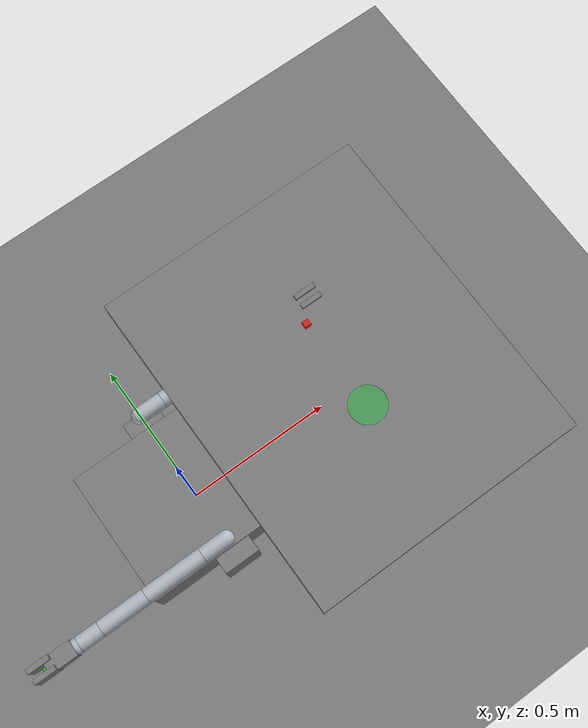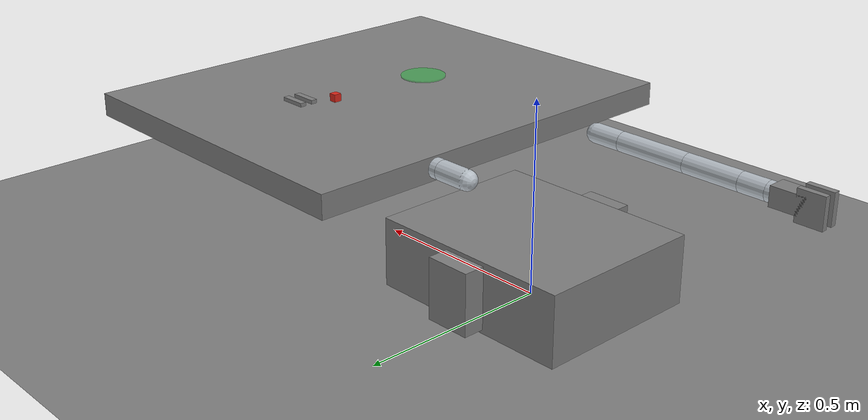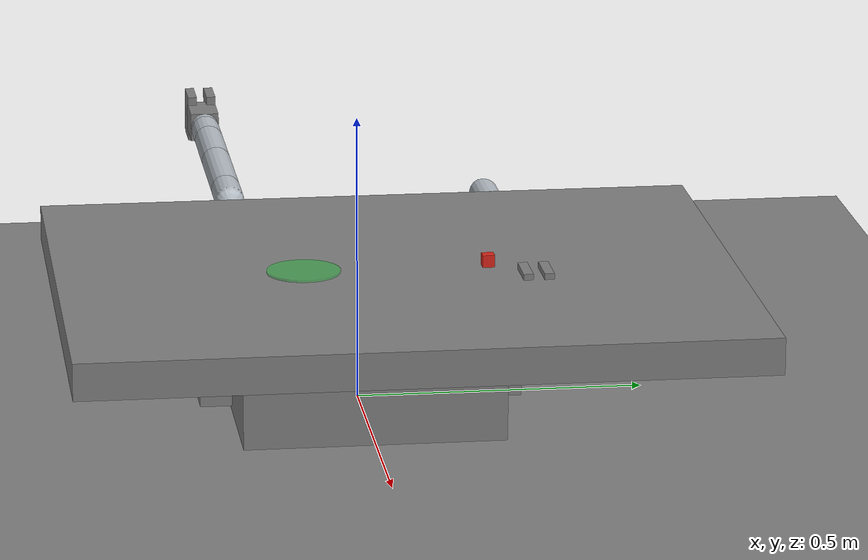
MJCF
<?xml version='1.0' encoding='utf-8'?>
<mujoco model="mobile_bi_nexarm">
  <compiler angle="radian" autolimits="true" />
  <option timestep="0.002" gravity="0 0 -9.81" />
  <default>
    <position kp="100" kv="0.3" />
  </default>
  <worldbody>
    <light pos="0 0 3" dir="0 0 -1" directional="true" />
    <geom name="floor" type="plane" size="2 2 0.05" contype="4" conaffinity="3" />
    <body name="table" pos="0.55 0 0.36">
      <geom name="table_collision" type="box" size="0.45 0.55 0.03" friction="0.2 0.005 0.0001" contype="4" conaffinity="3" />
    </body>
    <body name="mobile_base" pos="0 0 0.09">
      <joint name="base_x" type="slide" axis="1 0 0" damping="1" />
      <joint name="base_y" type="slide" axis="0 1 0" damping="1" />
      <joint name="base_yaw" type="hinge" axis="0 0 1" damping="1" />
      <geom name="base_collision" type="box" size="0.275 0.225 0.09" mass="18.0" contype="1" conaffinity="6" />
      <body name="lift_carriage" gravcomp="1">
        <joint name="lift_axis" type="slide" axis="0 0 1" range="0 0.35" limited="true" damping="4" />
        <geom type="box" size="0.06 0.28 0.08" mass="8.0" />
        <camera name="front" pos="0.18 0 0.66" quat="0.984726538905 0 0.174108137594 0" fovy="55.0" />
        <body name="left_arm_mount" pos="0 0.22 0.27" quat="0.707106781187 0 0 -0.707106781187">
          <body name="left_link_1" pos="0 0 0" gravcomp="1">
            <joint name="left_shoulder_pan" type="hinge" axis="0 0 -1" range="-2.35619449019 2.35619449019" limited="true" damping="0.3" armature="0.005" />
            <geom name="left_link_1_collision" type="capsule" fromto="0 0 0 0 0.08 0" size="0.025" mass="0.25" rgba="0.72 0.75 0.78 1" contype="1" conaffinity="6" />
            <body name="left_link_1_tip" pos="0 0.08 0">
              <body name="left_link_2" pos="0 0 0" gravcomp="1">
                <joint name="left_shoulder_lift" type="hinge" axis="-1 0 0" range="-2.09439510239 2.09439510239" limited="true" damping="0.3" armature="0.005" />
                <geom name="left_link_2_collision" type="capsule" fromto="0 0 0 0 0.19 0" size="0.025" mass="0.25" rgba="0.72 0.75 0.78 1" contype="1" conaffinity="6" />
                <body name="left_link_2_tip" pos="0 0.19 0">
                  <body name="left_link_3" pos="0 0 0" gravcomp="1">
                    <joint name="left_elbow_flex" type="hinge" axis="-1 0 0" range="-2.35619449019 2.35619449019" limited="true" damping="0.3" armature="0.005" />
                    <geom name="left_link_3_collision" type="capsule" fromto="0 0 0 0 0.15 0" size="0.025" mass="0.25" rgba="0.72 0.75 0.78 1" contype="1" conaffinity="6" />
                    <body name="left_link_3_tip" pos="0 0.15 0">
                      <body name="left_link_4" pos="0 0 0" gravcomp="1">
                        <joint name="left_wrist_flex" type="hinge" axis="1 0 0" range="-1.74532925199 1.74532925199" limited="true" damping="0.3" armature="0.005" />
                        <geom name="left_link_4_collision" type="capsule" fromto="0 0 0 0 0.07 0" size="0.025" mass="0.25" rgba="0.72 0.75 0.78 1" contype="1" conaffinity="6" />
                        <body name="left_link_4_tip" pos="0 0.07 0">
                          <body name="left_link_5" pos="0 0 0" gravcomp="1">
                            <joint name="left_wrist_roll" type="hinge" axis="0 -1 0" range="-3.14159265359 3.14159265359" limited="true" damping="0.3" armature="0.005" />
                            <geom name="left_link_5_collision" type="capsule" fromto="0 0 0 0 0.06 0" size="0.025" mass="0.25" rgba="0.72 0.75 0.78 1" contype="1" conaffinity="6" />
                            <body name="left_link_5_tip" pos="0 0.06 0">
                              <body name="left_gripper" pos="0 0 0" gravcomp="1">
                                <geom type="box" size="0.025 0.045 0.025" mass="0.2" />
                                <site name="left_tcp" pos="0 0.055 0" size="0.005" rgba="0.1 0.8 0.1 1" />
                                <body name="left_right_jaw" pos="0.017 0 0">
                                  <joint name="left_gripper" type="slide" axis="-1 0 0" range="-0.0255 0" limited="true" damping="0.2" />
                                  <geom name="left_right_jaw_collision" type="box" pos="0 0.055 0" size="0.008 0.035 0.04" friction="3 0.01 0.001" condim="4" />
                                </body>
                                <body name="left_left_jaw" pos="-0.017 0 0">
                                  <joint name="left_gripper_mimic" type="slide" axis="-1 0 0" range="0 0.0255" limited="true" />
                                  <geom name="left_left_jaw_collision" type="box" pos="0 0.055 0" size="0.008 0.035 0.04" friction="3 0.01 0.001" condim="4" />
                                </body>
                                <camera name="left_wrist" pos="0 0 0.08" quat="0.612372435696 0.353553390593 0.353553390593 -0.612372435696" fovy="70.0" />
                              </body>
                            </body>
                          </body>
                        </body>
                      </body>
                    </body>
                  </body>
                </body>
              </body>
            </body>
          </body>
        </body>
        <body name="right_arm_mount" pos="0 -0.22 0.27" quat="0.707106781187 0 0 0.707106781187">
          <body name="right_link_1" pos="0 0 0" gravcomp="1">
            <joint name="right_shoulder_pan" type="hinge" axis="0 0 -1" range="-2.35619449019 2.35619449019" limited="true" damping="0.3" armature="0.005" />
            <geom name="right_link_1_collision" type="capsule" fromto="0 0 0 0 0.08 0" size="0.025" mass="0.25" rgba="0.72 0.75 0.78 1" contype="1" conaffinity="6" />
            <body name="right_link_1_tip" pos="0 0.08 0">
              <body name="right_link_2" pos="0 0 0" gravcomp="1">
                <joint name="right_shoulder_lift" type="hinge" axis="-1 0 0" range="-2.09439510239 2.09439510239" limited="true" damping="0.3" armature="0.005" />
                <geom name="right_link_2_collision" type="capsule" fromto="0 0 0 0 0.19 0" size="0.025" mass="0.25" rgba="0.72 0.75 0.78 1" contype="1" conaffinity="6" />
                <body name="right_link_2_tip" pos="0 0.19 0">
                  <body name="right_link_3" pos="0 0 0" gravcomp="1">
                    <joint name="right_elbow_flex" type="hinge" axis="-1 0 0" range="-2.35619449019 2.35619449019" limited="true" damping="0.3" armature="0.005" />
                    <geom name="right_link_3_collision" type="capsule" fromto="0 0 0 0 0.15 0" size="0.025" mass="0.25" rgba="0.72 0.75 0.78 1" contype="1" conaffinity="6" />
                    <body name="right_link_3_tip" pos="0 0.15 0">
                      <body name="right_link_4" pos="0 0 0" gravcomp="1">
                        <joint name="right_wrist_flex" type="hinge" axis="1 0 0" range="-1.74532925199 1.74532925199" limited="true" damping="0.3" armature="0.005" />
                        <geom name="right_link_4_collision" type="capsule" fromto="0 0 0 0 0.07 0" size="0.025" mass="0.25" rgba="0.72 0.75 0.78 1" contype="1" conaffinity="6" />
                        <body name="right_link_4_tip" pos="0 0.07 0">
                          <body name="right_link_5" pos="0 0 0" gravcomp="1">
                            <joint name="right_wrist_roll" type="hinge" axis="0 -1 0" range="-3.14159265359 3.14159265359" limited="true" damping="0.3" armature="0.005" />
                            <geom name="right_link_5_collision" type="capsule" fromto="0 0 0 0 0.06 0" size="0.025" mass="0.25" rgba="0.72 0.75 0.78 1" contype="1" conaffinity="6" />
                            <body name="right_link_5_tip" pos="0 0.06 0">
                              <body name="right_gripper" pos="0 0 0" gravcomp="1">
                                <geom type="box" size="0.025 0.045 0.025" mass="0.2" />
                                <site name="right_tcp" pos="0 0.055 0" size="0.005" rgba="0.1 0.8 0.1 1" />
                                <body name="right_right_jaw" pos="0.017 0 0">
                                  <joint name="right_gripper" type="slide" axis="-1 0 0" range="-0.0255 0" limited="true" damping="0.2" />
                                  <geom name="right_right_jaw_collision" type="box" pos="0 0.055 0" size="0.008 0.035 0.04" friction="3 0.01 0.001" condim="4" />
                                </body>
                                <body name="right_left_jaw" pos="-0.017 0 0">
                                  <joint name="right_gripper_mimic" type="slide" axis="-1 0 0" range="0 0.0255" limited="true" />
                                  <geom name="right_left_jaw_collision" type="box" pos="0 0.055 0" size="0.008 0.035 0.04" friction="3 0.01 0.001" condim="4" />
                                </body>
                                <camera name="right_wrist" pos="0 0 0.08" quat="0.612372435696 -0.353553390593 0.353553390593 0.612372435696" fovy="70.0" />
                              </body>
                            </body>
                          </body>
                        </body>
                      </body>
                    </body>
                  </body>
                </body>
              </body>
            </body>
          </body>
        </body>
      </body>
    </body>
    <body name="cube" pos="0.55 0.15 0.4">
      <freejoint name="cube_joint" />
      <geom name="cube_collision" type="box" size="0.01 0.01 0.01" mass="0.05" rgba="0.85 0.15 0.1 1" contype="2" conaffinity="5" />
    </body>
    <body name="target_zone" pos="0.55 -0.15 0.392">
      <geom name="target_zone_visual" type="cylinder" size="0.06 0.002" rgba="0.1 0.8 0.2 0.45" contype="0" conaffinity="0" />
    </body>
  </worldbody>
  <equality>
    <joint name="left_gripper_mimic_constraint" joint1="left_gripper_mimic" joint2="left_gripper" polycoef="0 -1 0 0 0" />
    <joint name="right_gripper_mimic_constraint" joint1="right_gripper_mimic" joint2="right_gripper" polycoef="0 -1 0 0 0" />
  </equality>
  <contact>
    <exclude name="left_jaw_pair_exclude" body1="left_left_jaw" body2="left_right_jaw" />
    <exclude name="right_jaw_pair_exclude" body1="right_left_jaw" body2="right_right_jaw" />
  </contact>
  <actuator>
    <position name="left_shoulder_pan_control" joint="left_shoulder_pan" ctrlrange="-2.35619449019 2.35619449019" ctrllimited="true" />
    <position name="left_shoulder_lift_control" joint="left_shoulder_lift" ctrlrange="-2.09439510239 2.09439510239" ctrllimited="true" />
    <position name="left_elbow_flex_control" joint="left_elbow_flex" ctrlrange="-2.35619449019 2.35619449019" ctrllimited="true" />
    <position name="left_wrist_flex_control" joint="left_wrist_flex" ctrlrange="-1.74532925199 1.74532925199" ctrllimited="true" />
    <position name="left_wrist_roll_control" joint="left_wrist_roll" ctrlrange="-3.14159265359 3.14159265359" ctrllimited="true" />
    <position name="left_gripper_control" joint="left_gripper" ctrlrange="-0.0255 0" ctrllimited="true" />
    <position name="right_shoulder_pan_control" joint="right_shoulder_pan" ctrlrange="-2.35619449019 2.35619449019" ctrllimited="true" />
    <position name="right_shoulder_lift_control" joint="right_shoulder_lift" ctrlrange="-2.09439510239 2.09439510239" ctrllimited="true" />
    <position name="right_elbow_flex_control" joint="right_elbow_flex" ctrlrange="-2.35619449019 2.35619449019" ctrllimited="true" />
    <position name="right_wrist_flex_control" joint="right_wrist_flex" ctrlrange="-1.74532925199 1.74532925199" ctrllimited="true" />
    <position name="right_wrist_roll_control" joint="right_wrist_roll" ctrlrange="-3.14159265359 3.14159265359" ctrllimited="true" />
    <position name="right_gripper_control" joint="right_gripper" ctrlrange="-0.0255 0" ctrllimited="true" />
    <position name="lift_axis_control" joint="lift_axis" ctrlrange="0 0.35" ctrllimited="true" kp="300" kv="10" />
  </actuator>
</mujoco>
